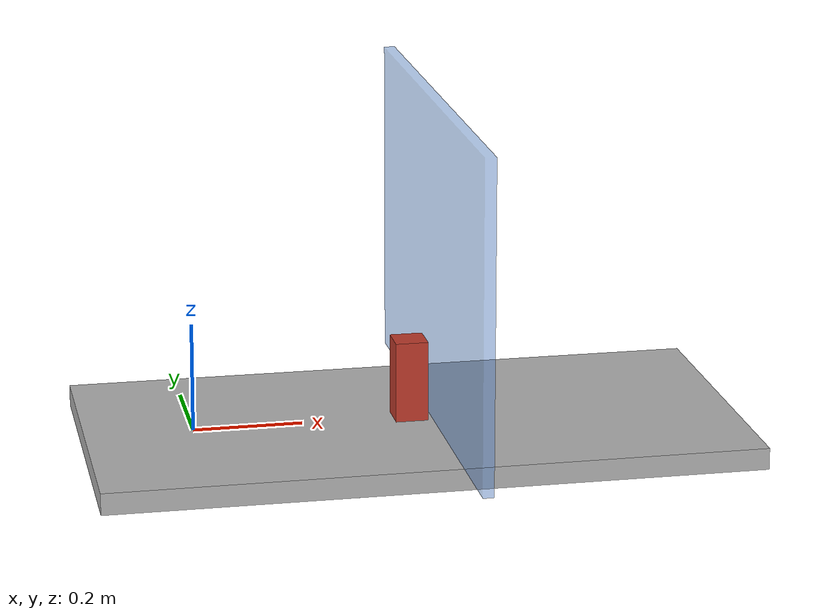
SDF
<?xml version="1.0" ?>
<sdf version="1.6">
  <world name="wiping">
    <include><uri>model://sun</uri></include>

    <!-- physics tuned a bit for stable contact -->
    <physics type="ode">
      <max_step_size>0.001</max_step_size>
      <real_time_update_rate>1000</real_time_update_rate>
      <ode>
        <solver><type>quick</type><iters>50</iters><sor>1.3</sor></solver>
        <constraints>
          <cfm>0.0</cfm><erp>0.2</erp>
          <contact_max_correcting_vel>100.0</contact_max_correcting_vel>
          <contact_surface_layer>0.001</contact_surface_layer>
        </constraints>
      </ode>
    </physics>

    <model name="countertop">
      <static>true</static>
      <pose>0.40 0.00 -0.02 0 0 0</pose>
      <link name="link">
        <collision name="c">
          <geometry><box><size>1.20 0.60 0.04</size></box></geometry>
          <surface>
            <friction><ode><mu>0.6</mu><mu2>0.6</mu2></ode></friction>
            <contact><ode><kp>5000.0</kp><kd>50.0</kd><max_vel>0.0</max_vel><min_depth>0.001</min_depth></ode></contact>
          </surface>
        </collision>
        <visual name="v">
          <geometry><box><size>1.20 0.60 0.04</size></box></geometry>
          <material><ambient>0.7 0.7 0.7 1</ambient><diffuse>0.7 0.7 0.7 1</diffuse></material>
        </visual>
      </link>
    </model>

    <model name="faucet">
      <static>true</static>
      <pose>0.40 0.00 0.075 0 0 0</pose>
      <link name="link">
        <collision name="c"><geometry><box><size>0.06 0.06 0.15</size></box></geometry></collision>
        <visual name="v">
          <geometry><box><size>0.06 0.06 0.15</size></box></geometry>
          <material><ambient>0.75 0.23 0.17 1</ambient><diffuse>0.75 0.23 0.17 1</diffuse></material>
        </visual>
      </link>
    </model>

    <model name="mirror">
      <static>true</static>
      <pose>0.45 0.00 0.30 0 0 0</pose>
      <link name="link">
        <collision name="c">
          <geometry><box><size>0.02 0.90 0.60</size></box></geometry>
          <surface>
            <friction><ode><mu>0.6</mu><mu2>0.6</mu2></ode></friction>
            <contact><ode><kp>5000.0</kp><kd>50.0</kd><max_vel>0.0</max_vel><min_depth>0.001</min_depth></ode></contact>
          </surface>
        </collision>
        <visual name="v">
          <geometry><box><size>0.02 0.90 0.60</size></box></geometry>
          <material><ambient>0.4 0.6 0.9 0.5</ambient><diffuse>0.4 0.6 0.9 0.5</diffuse></material>
        </visual>
      </link>
    </model>
  </world>
</sdf>
